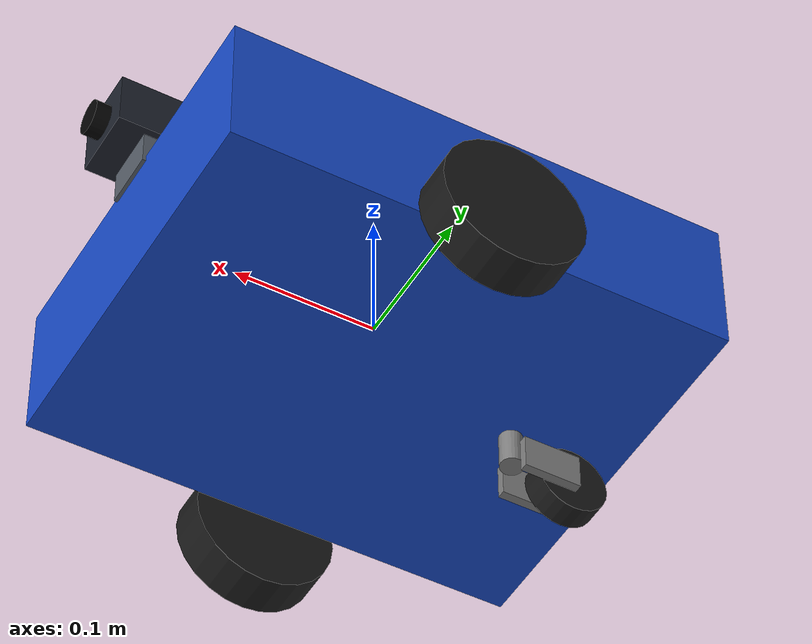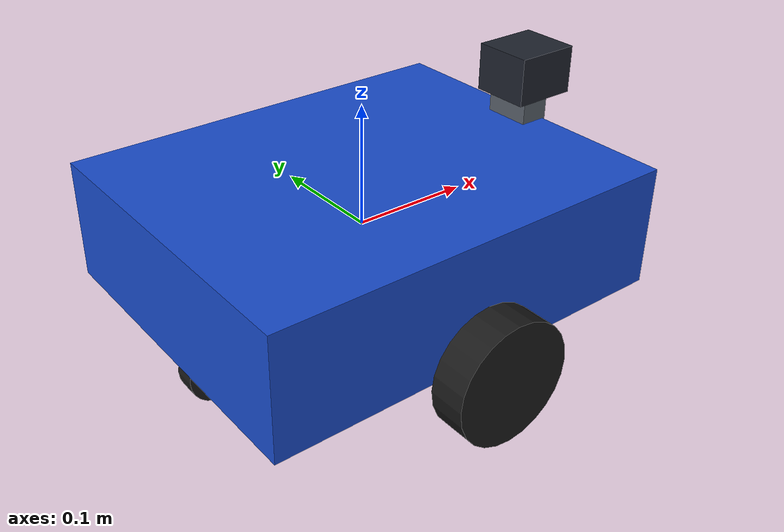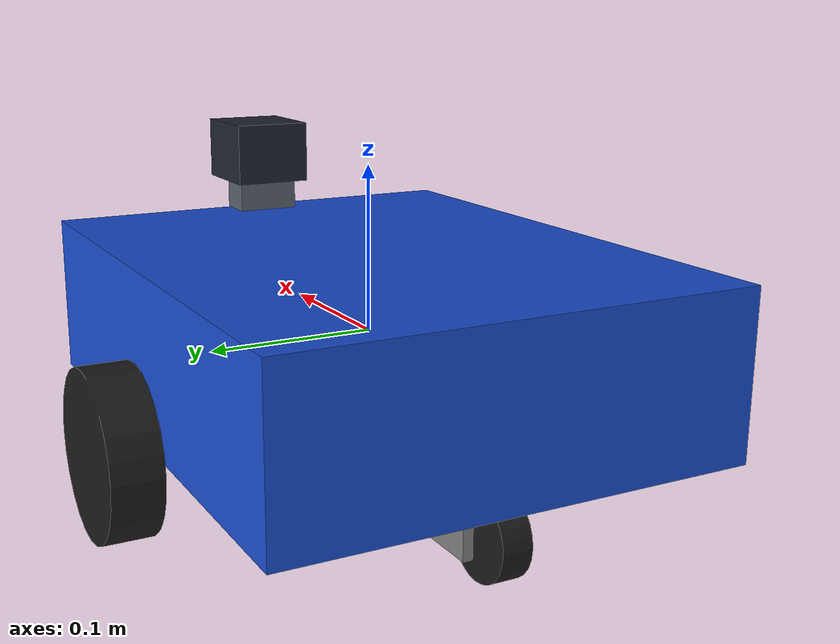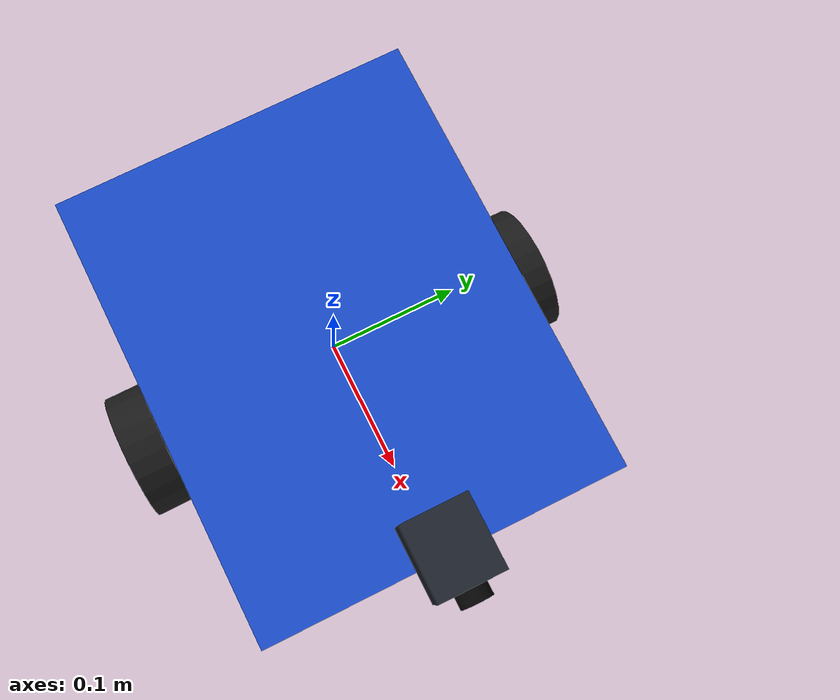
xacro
<?xml version="1.0"?>
<robot name="differential_robot" xmlns:xacro="http://www.ros.org/wiki/xacro">

  <!-- Robot chassis -->
  <link name="base_link">
    <visual>
      <geometry>
        <box size="0.35 0.28 0.10"/>
      </geometry>
      <material name="blue">
        <color rgba="0.1 0.3 0.8 1"/>
      </material>
    </visual>

    <collision>
      <geometry>
        <box size="0.35 0.28 0.10"/>
      </geometry>
    </collision>

    <inertial>
      <mass value="2.0"/>
      <inertia ixx="0.0142" ixy="0" ixz="0"
               iyy="0.0242" iyz="0" izz="0.0261"/>
    </inertial>
  </link>

  <!-- Left wheel -->
  <link name="left_wheel_link">
    <visual>
      <origin rpy="1.5708 0 0" xyz="0 0 0"/>
      <geometry>
        <cylinder radius="0.05" length="0.03"/>
      </geometry>
      <material name="black">
        <color rgba="0.1 0.1 0.1 1"/>
      </material>
    </visual>

    <collision>
      <origin rpy="1.5708 0 0" xyz="0 0 0"/>
      <geometry>
        <cylinder radius="0.05" length="0.03"/>
      </geometry>
    </collision>

    <inertial>
      <mass value="0.25"/>
      <inertia ixx="0.000181" ixy="0" ixz="0"
               iyy="0.000313" iyz="0" izz="0.000181"/>
    </inertial>
  </link>

  <joint name="left_wheel_joint" type="continuous">
    <parent link="base_link"/>
    <child link="left_wheel_link"/>
    <origin xyz="0 0.16 -0.05" rpy="0 0 0"/>
    <axis xyz="0 1 0"/>
  </joint>

  <!-- Right wheel -->
  <link name="right_wheel_link">
    <visual>
      <origin rpy="1.5708 0 0" xyz="0 0 0"/>
      <geometry>
        <cylinder radius="0.05" length="0.03"/>
      </geometry>
      <material name="black"/>
    </visual>

    <collision>
      <origin rpy="1.5708 0 0" xyz="0 0 0"/>
      <geometry>
        <cylinder radius="0.05" length="0.03"/>
      </geometry>
    </collision>

    <inertial>
      <mass value="0.25"/>
      <inertia ixx="0.000181" ixy="0" ixz="0"
               iyy="0.000313" iyz="0" izz="0.000181"/>
    </inertial>
  </link>

  <joint name="right_wheel_joint" type="continuous">
    <parent link="base_link"/>
    <child link="right_wheel_link"/>
    <origin xyz="0 -0.16 -0.05" rpy="0 0 0"/>
    <axis xyz="0 1 0"/>
  </joint>

  <!-- Rear swivel caster mounting and fork -->
  <link name="caster_swivel_link">
    <!-- Vertical swivel stem -->
    <visual>
      <origin xyz="0 0 -0.0125"/>
      <geometry>
        <cylinder radius="0.008" length="0.025"/>
      </geometry>
      <material name="grey">
        <color rgba="0.5 0.5 0.5 1"/>
      </material>
    </visual>

    <collision>
      <origin xyz="0 0 -0.0125"/>
      <geometry>
        <cylinder radius="0.008" length="0.025"/>
      </geometry>
    </collision>

    <!-- Two fork plates, leaving clearance around the wheel -->
    <visual>
      <origin xyz="-0.02 0.014 -0.025"/>
      <geometry>
        <box size="0.04 0.006 0.025"/>
      </geometry>
      <material name="grey"/>
    </visual>
    <collision>
      <origin xyz="-0.02 0.014 -0.025"/>
      <geometry>
        <box size="0.04 0.006 0.025"/>
      </geometry>
    </collision>

    <visual>
      <origin xyz="-0.02 -0.014 -0.025"/>
      <geometry>
        <box size="0.04 0.006 0.025"/>
      </geometry>
      <material name="grey"/>
    </visual>
    <collision>
      <origin xyz="-0.02 -0.014 -0.025"/>
      <geometry>
        <box size="0.04 0.006 0.025"/>
      </geometry>
    </collision>

    <inertial>
      <mass value="0.03"/>
      <inertia ixx="0.000002" ixy="0" ixz="0"
               iyy="0.000002" iyz="0"
               izz="0.000001"/>
    </inertial>
  </link>

  <!-- Vertical swivel axis -->
  <joint name="caster_swivel_joint" type="continuous">
    <parent link="base_link"/>
    <child link="caster_swivel_link"/>
    <origin xyz="-0.10 0 -0.05" rpy="0 0 0"/>
    <axis xyz="0 0 1"/>
  </joint>

  <!-- Rear caster wheel -->
  <link name="caster_wheel_link">
    <visual>
      <origin xyz="0 0 0" rpy="1.5708 0 0"/>
      <geometry>
        <cylinder radius="0.025" length="0.018"/>
      </geometry>
      <material name="black">
        <color rgba="0.1 0.1 0.1 1"/>
      </material>
    </visual>

    <collision>
      <origin xyz="0 0 0" rpy="1.5708 0 0"/>
      <geometry>
        <cylinder radius="0.025" length="0.018"/>
      </geometry>
    </collision>

    <inertial>
      <mass value="0.05"/>
      <inertia ixx="0.00000916" ixy="0" ixz="0"
               iyy="0.00001563" iyz="0"
               izz="0.00000916"/>
    </inertial>
  </link>

  <!-- Horizontal wheel axle -->
  <joint name="caster_wheel_joint" type="continuous">
    <parent link="caster_swivel_link"/>
    <child link="caster_wheel_link"/>
    <origin xyz="-0.04 0 -0.025" rpy="0 0 0"/>
    <axis xyz="0 1 0"/>
  </joint>

  <!-- Gazebo Fortress differential-drive system -->
  <gazebo>
    <plugin
      filename="libignition-gazebo-diff-drive-system.so"
      name="ignition::gazebo::systems::DiffDrive">

      <left_joint>left_wheel_joint</left_joint>
      <right_joint>right_wheel_joint</right_joint>

      <wheel_separation>0.32</wheel_separation>
      <wheel_radius>0.05</wheel_radius>

      <topic>cmd_vel</topic>
      <odom_topic>odom</odom_topic>

      <frame_id>odom</frame_id>
      <child_frame_id>base_link</child_frame_id>

      <odom_publish_frequency>50</odom_publish_frequency>

    </plugin>
  </gazebo>

  <!-- Gazebo Fortress joint-state publisher -->
  <gazebo>
    <plugin
      filename="libignition-gazebo-joint-state-publisher-system.so"
      name="ignition::gazebo::systems::JointStatePublisher">

      <joint_name>left_wheel_joint</joint_name>
      <joint_name>right_wheel_joint</joint_name>
      <joint_name>caster_swivel_joint</joint_name>
      <joint_name>caster_wheel_joint</joint_name>

    </plugin>
  </gazebo>

  <!-- Front-facing camera -->
  <link name="camera_link">
    <visual>
      <origin xyz="0 0 0"/>
      <geometry>
        <box size="0.055 0.05 0.04"/>
      </geometry>
      <material name="camera_body">
        <color rgba="0.12 0.14 0.18 1"/>
      </material>
    </visual>

    <visual>
      <origin xyz="0.032 0 0" rpy="0 1.5708 0"/>
      <geometry>
        <cylinder radius="0.012" length="0.012"/>
      </geometry>
      <material name="camera_lens">
        <color rgba="0.02 0.02 0.02 1"/>
      </material>
    </visual>

    <visual>
      <origin xyz="-0.005 0 -0.032"/>
      <geometry>
        <box size="0.025 0.04 0.025"/>
      </geometry>
      <material name="camera_mount">
        <color rgba="0.35 0.38 0.42 1"/>
      </material>
    </visual>

    <collision>
      <geometry>
        <box size="0.055 0.05 0.04"/>
      </geometry>
    </collision>

    <inertial>
      <mass value="0.05"/>
      <inertia ixx="0.000017" ixy="0" ixz="0"
               iyy="0.000013" iyz="0" izz="0.000017"/>
    </inertial>
  </link>

  <joint name="camera_joint" type="fixed">
    <parent link="base_link"/>
    <child link="camera_link"/>
    <origin xyz="0.17 0 0.09" rpy="0 0 0"/>
  </joint>

  <!-- Gazebo Fortress camera sensor -->
  <gazebo reference="camera_link">
    <sensor name="front_camera" type="camera">
      <pose>0.032 0 0 0 0 0</pose>
      <always_on>true</always_on>
      <update_rate>30</update_rate>
      <visualize>true</visualize>

      <camera>
        <horizontal_fov>1.5708</horizontal_fov>
        <image>
          <width>640</width>
          <height>480</height>
          <format>R8G8B8</format>
        </image>
        <clip>
          <near>0.05</near>
          <far>10.0</far>
        </clip>
      </camera>

      <topic>/camera/image</topic>
    </sensor>
  </gazebo>

</robot>
